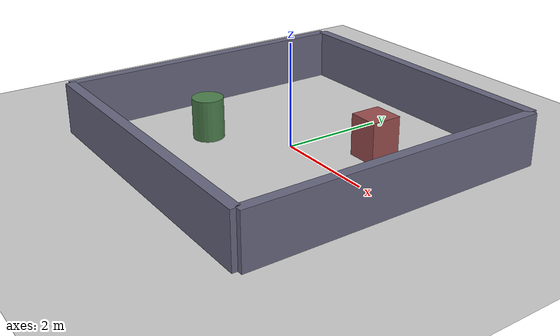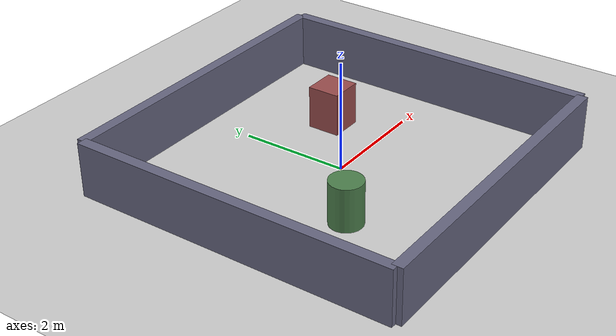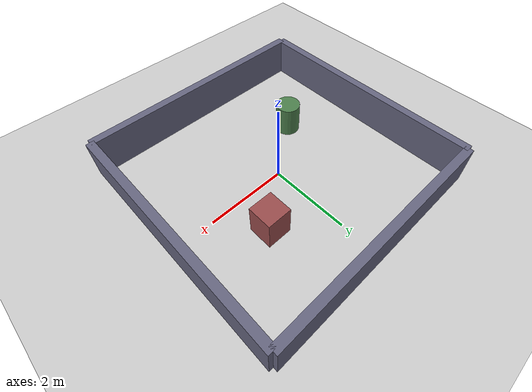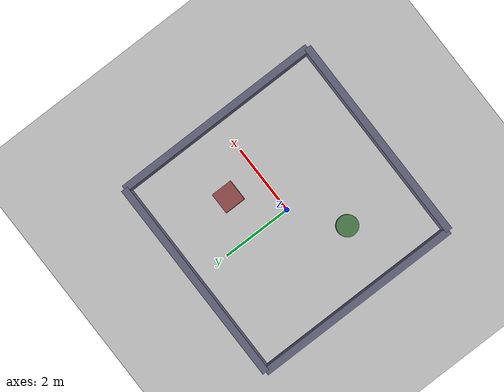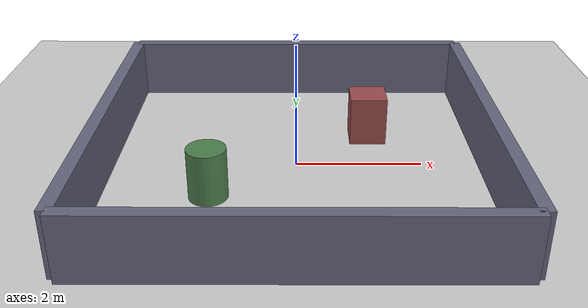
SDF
<?xml version="1.0" ?>
<sdf version="1.9">
  <world name="four_wall_world">

    <plugin filename="gz-sim-physics-system" name="gz::sim::systems::Physics"/>
    <plugin filename="gz-sim-user-commands-system" name="gz::sim::systems::UserCommands"/>
    <plugin filename="gz-sim-scene-broadcaster-system" name="gz::sim::systems::SceneBroadcaster"/>

    <light type="directional" name="sun">
      <cast_shadows>true</cast_shadows>
      <pose>0 0 10 0 0 0</pose>
      <diffuse>0.8 0.8 0.8 1</diffuse>
      <specular>0.2 0.2 0.2 1</specular>
      <direction>-0.5 0.1 -0.9</direction>
    </light>

    <model name="ground_plane">
      <static>true</static>
      <link name="link">
        <collision name="collision">
          <geometry><plane><normal>0 0 1</normal><size>100 100</size></plane></geometry>
        </collision>
        <visual name="visual">
          <geometry><plane><normal>0 0 1</normal><size>100 100</size></plane></geometry>
          <material><ambient>0.8 0.8 0.8 1</ambient><diffuse>0.8 0.8 0.8 1</diffuse></material>
        </visual>
      </link>
    </model>

    <!-- Four walls forming a 6x6m room, centered at origin -->
    <model name="wall_north">
      <static>true</static>
      <pose>0 3 0.5 0 0 0</pose>
      <link name="link">
        <collision name="c"><geometry><box><size>6 0.2 1</size></box></geometry></collision>
        <visual name="v"><geometry><box><size>6 0.2 1</size></box></geometry>
          <material><ambient>0.4 0.4 0.5 1</ambient><diffuse>0.4 0.4 0.5 1</diffuse></material></visual>
      </link>
    </model>

    <model name="wall_south">
      <static>true</static>
      <pose>0 -3 0.5 0 0 0</pose>
      <link name="link">
        <collision name="c"><geometry><box><size>6 0.2 1</size></box></geometry></collision>
        <visual name="v"><geometry><box><size>6 0.2 1</size></box></geometry>
          <material><ambient>0.4 0.4 0.5 1</ambient><diffuse>0.4 0.4 0.5 1</diffuse></material></visual>
      </link>
    </model>

    <model name="wall_east">
      <static>true</static>
      <pose>3 0 0.5 0 0 0</pose>
      <link name="link">
        <collision name="c"><geometry><box><size>0.2 6 1</size></box></geometry></collision>
        <visual name="v"><geometry><box><size>0.2 6 1</size></box></geometry>
          <material><ambient>0.4 0.4 0.5 1</ambient><diffuse>0.4 0.4 0.5 1</diffuse></material></visual>
      </link>
    </model>

    <model name="wall_west">
      <static>true</static>
      <pose>-3 0 0.5 0 0 0</pose>
      <link name="link">
        <collision name="c"><geometry><box><size>0.2 6 1</size></box></geometry></collision>
        <visual name="v"><geometry><box><size>0.2 6 1</size></box></geometry>
          <material><ambient>0.4 0.4 0.5 1</ambient><diffuse>0.4 0.4 0.5 1</diffuse></material></visual>
      </link>
    </model>

    <!-- Two interior obstacles for map features -->
    <model name="obstacle_box">
      <static>true</static>
      <pose>1.2 1.0 0.4 0 0 0</pose>
      <link name="link">
        <collision name="c"><geometry><box><size>0.6 0.6 0.8</size></box></geometry></collision>
        <visual name="v"><geometry><box><size>0.6 0.6 0.8</size></box></geometry>
          <material><ambient>0.6 0.3 0.3 1</ambient><diffuse>0.6 0.3 0.3 1</diffuse></material></visual>
      </link>
    </model>

    <model name="obstacle_cylinder">
      <static>true</static>
      <pose>-1.3 -1.0 0.4 0 0 0</pose>
      <link name="link">
        <collision name="c"><geometry><cylinder><radius>0.3</radius><length>0.8</length></cylinder></geometry></collision>
        <visual name="v"><geometry><cylinder><radius>0.3</radius><length>0.8</length></cylinder></geometry>
          <material><ambient>0.3 0.5 0.3 1</ambient><diffuse>0.3 0.5 0.3 1</diffuse></material></visual>
      </link>
    </model>

  </world>
</sdf>
